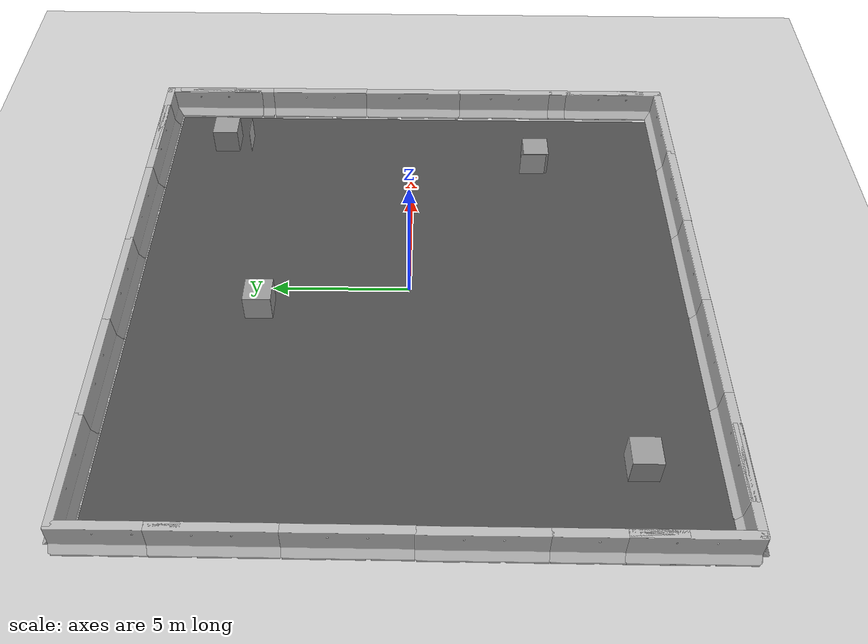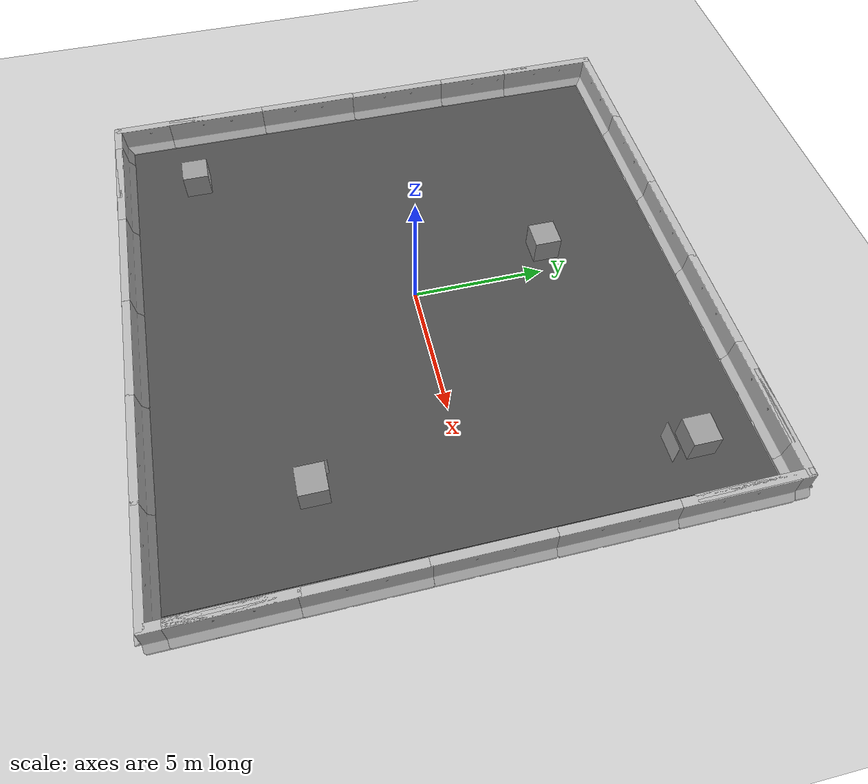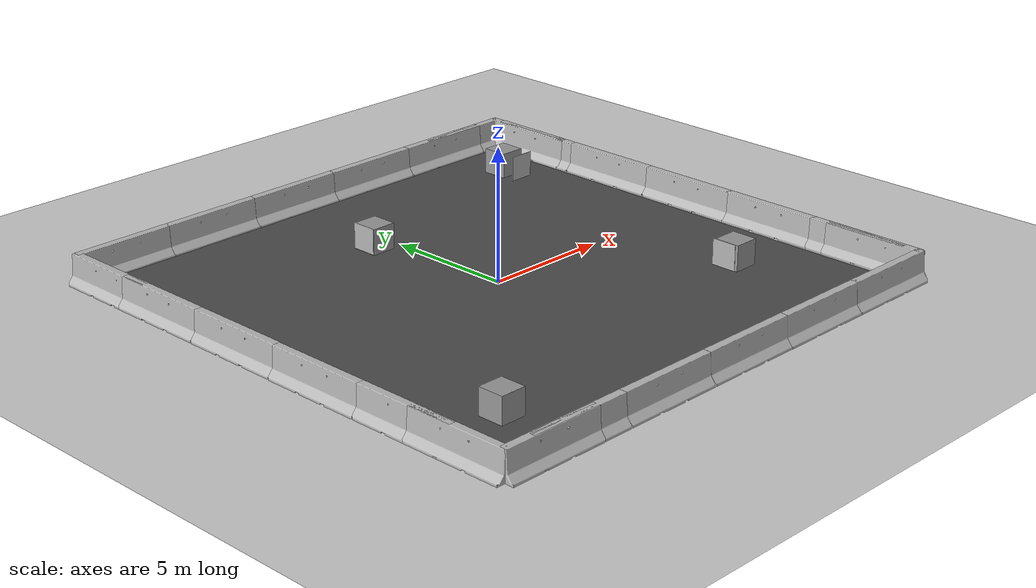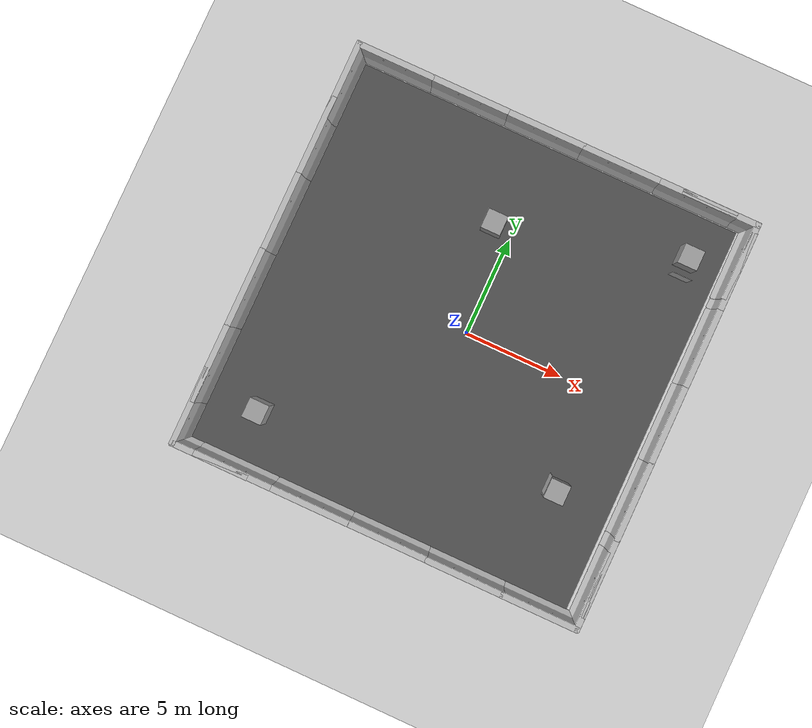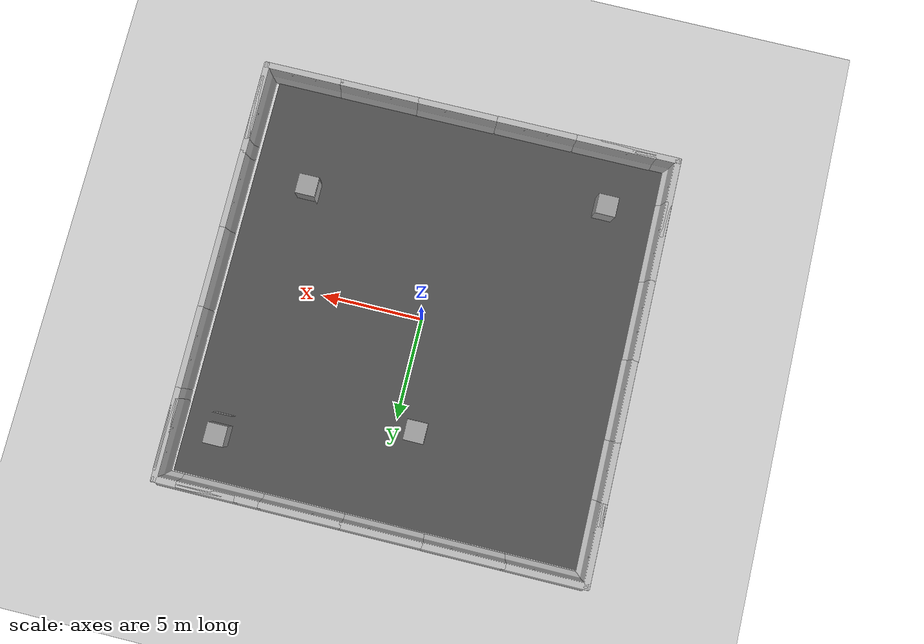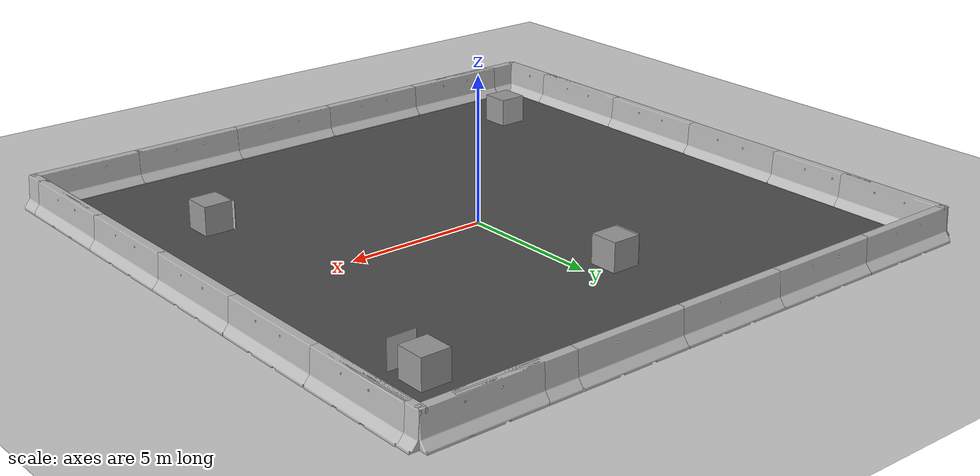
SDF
<sdf version="1.6">
 <world name="default">
  <light name="sun" type="directional">
   <pose>0 0 10 0 -0 0</pose>
   <diffuse>0.8 0.8 0.8 1</diffuse>
   <specular>0.2 0.2 0.2 1</specular>
   <attenuation>
    <range>1000</range>
    <constant>0.9</constant>
    <linear>0.01</linear>
    <quadratic>0.001</quadratic>
   </attenuation>
   <direction>-0.5 0.1 -0.9</direction>
  </light>
  <model name="ground_plane">
   <static>1</static>
   <link name="link">
    <collision name="collision">
     <geometry><plane><normal>0 0 1</normal><size>100 100</size></plane></geometry>
     <surface><friction><ode><mu>100</mu><mu2>50</mu2></ode></friction></surface>
    </collision>
    <visual name="visual">
     <cast_shadows>0</cast_shadows>
     <geometry><plane><normal>0 0 1</normal><size>100 100</size></plane></geometry>
     <material>
      <script><uri>file://media/materials/scripts/gazebo.material</uri><name>Gazebo/Grey</name></script>
     </material>
    </visual>
   </link>
  </model>
  <gravity>0 0 -9.8</gravity>
  <magnetic_field>6e-06 2.3e-05 -4.2e-05</magnetic_field>
  <atmosphere type="adiabatic"/>
  <physics name="default_physics" default="0" type="ode">
   <max_step_size>0.001</max_step_size>
   <real_time_factor>1</real_time_factor>
   <real_time_update_rate>1000</real_time_update_rate>
  </physics>
  <scene><ambient>0.4 0.4 0.4 1</ambient><background>0.7 0.7 0.7 1</background><shadows>1</shadows></scene>
  <audio><device>default</device></audio>
  <spherical_coordinates>
   <surface_model>EARTH_WGS84</surface_model>
   <latitude_deg>0</latitude_deg>
   <longitude_deg>0</longitude_deg>
   <elevation>0</elevation>
   <heading_deg>0</heading_deg>
  </spherical_coordinates>
  <model name="asphalt_plane">
   <static>1</static>
   <link name="link">
    <collision name="collision"><geometry><box><size>20 20 0.1</size></box></geometry></collision>
    <visual name="visual">
     <cast_shadows>0</cast_shadows>
     <geometry><box><size>20 20 0.1</size></box></geometry>
     <material>
      <script>
       <uri>model://asphalt_plane/materials/scripts</uri>
       <uri>model://asphalt_plane/materials/textures</uri>
       <name>vrc/asphalt</name>
      </script>
     </material>
    </visual>
   </link>
   <pose>-0.108878 -0.066396 0 0 -0 0</pose>
  </model>
  <model name="jersey_barrier">
   <static>1</static>
   <link name="link">
    <visual name="visual">
     <geometry><mesh><uri>model://jersey_barrier/meshes/jersey_barrier.dae</uri></mesh></geometry>
    </visual>
    <collision name="upright">
     <pose>0 0 0.5715 0 -0 0</pose>
     <geometry><box><size>4.06542 0.3063 1.143</size></box></geometry>
    </collision>
    <collision name="base">
     <pose>0 0 0.032258 0 -0 0</pose>
     <geometry><box><size>4.06542 0.8107 0.064516</size></box></geometry>
    </collision>
    <collision name="base2">
     <pose>0 0 0.1 0 -0 0</pose>
     <geometry><box><size>4.06542 0.65 0.1</size></box></geometry>
    </collision>
    <collision name="base3">
     <pose>0 0 0.2 0 -0 0</pose>
     <geometry><box><size>4.06542 0.5 0.1</size></box></geometry>
    </collision>
    <collision name="left-angle">
     <pose>0 -0.224 0.2401 0.9 -0 0</pose>
     <geometry><box><size>4.06542 0.5 0.064516</size></box></geometry>
    </collision>
    <collision name="right-angle">
     <pose>0 0.224 0.2401 -0.9 0 0</pose>
     <geometry><box><size>4.06542 0.5 0.064516</size></box></geometry>
    </collision>
   </link>
   <pose>-10.4081 -2.37167 0 0 0 -1.56853</pose>
  </model>
  <model name="jersey_barrier_clone">
   <static>1</static>
   <link name="link">
    <visual name="visual">
     <geometry><mesh><uri>model://jersey_barrier/meshes/jersey_barrier.dae</uri></mesh></geometry>
    </visual>
    <collision name="upright">
     <pose>0 0 0.5715 0 -0 0</pose>
     <geometry><box><size>4.06542 0.3063 1.143</size></box></geometry>
    </collision>
    <collision name="base">
     <pose>0 0 0.032258 0 -0 0</pose>
     <geometry><box><size>4.06542 0.8107 0.064516</size></box></geometry>
    </collision>
    <collision name="base2">
     <pose>0 0 0.1 0 -0 0</pose>
     <geometry><box><size>4.06542 0.65 0.1</size></box></geometry>
    </collision>
    <collision name="base3">
     <pose>0 0 0.2 0 -0 0</pose>
     <geometry><box><size>4.06542 0.5 0.1</size></box></geometry>
    </collision>
    <collision name="left-angle">
     <pose>0 -0.224 0.2401 0.9 -0 0</pose>
     <geometry><box><size>4.06542 0.5 0.064516</size></box></geometry>
    </collision>
    <collision name="right-angle">
     <pose>0 0.224 0.2401 -0.9 0 0</pose>
     <geometry><box><size>4.06542 0.5 0.064516</size></box></geometry>
    </collision>
   </link>
   <pose>-10.4006 -6.32632 0 0 0 -1.56853</pose>
  </model>
  <model name="jersey_barrier_clone_clone">
   <static>1</static>
   <link name="link">
    <visual name="visual">
     <geometry><mesh><uri>model://jersey_barrier/meshes/jersey_barrier.dae</uri></mesh></geometry>
    </visual>
    <collision name="upright">
     <pose>0 0 0.5715 0 -0 0</pose>
     <geometry><box><size>4.06542 0.3063 1.143</size></box></geometry>
    </collision>
    <collision name="base">
     <pose>0 0 0.032258 0 -0 0</pose>
     <geometry><box><size>4.06542 0.8107 0.064516</size></box></geometry>
    </collision>
    <collision name="base2">
     <pose>0 0 0.1 0 -0 0</pose>
     <geometry><box><size>4.06542 0.65 0.1</size></box></geometry>
    </collision>
    <collision name="base3">
     <pose>0 0 0.2 0 -0 0</pose>
     <geometry><box><size>4.06542 0.5 0.1</size></box></geometry>
    </collision>
    <collision name="left-angle">
     <pose>0 -0.224 0.2401 0.9 -0 0</pose>
     <geometry><box><size>4.06542 0.5 0.064516</size></box></geometry>
    </collision>
    <collision name="right-angle">
     <pose>0 0.224 0.2401 -0.9 0 0</pose>
     <geometry><box><size>4.06542 0.5 0.064516</size></box></geometry>
    </collision>
   </link>
   <pose>-10.399 -8.55847 0 0 0 -1.56853</pose>
  </model>
  <model name="jersey_barrier_clone_0">
   <static>1</static>
   <link name="link">
    <visual name="visual">
     <geometry><mesh><uri>model://jersey_barrier/meshes/jersey_barrier.dae</uri></mesh></geometry>
    </visual>
    <collision name="upright">
     <pose>0 0 0.5715 0 -0 0</pose>
     <geometry><box><size>4.06542 0.3063 1.143</size></box></geometry>
    </collision>
    <collision name="base">
     <pose>0 0 0.032258 0 -0 0</pose>
     <geometry><box><size>4.06542 0.8107 0.064516</size></box></geometry>
    </collision>
    <collision name="base2">
     <pose>0 0 0.1 0 -0 0</pose>
     <geometry><box><size>4.06542 0.65 0.1</size></box></geometry>
    </collision>
    <collision name="base3">
     <pose>0 0 0.2 0 -0 0</pose>
     <geometry><box><size>4.06542 0.5 0.1</size></box></geometry>
    </collision>
    <collision name="left-angle">
     <pose>0 -0.224 0.2401 0.9 -0 0</pose>
     <geometry><box><size>4.06542 0.5 0.064516</size></box></geometry>
    </collision>
    <collision name="right-angle">
     <pose>0 0.224 0.2401 -0.9 0 0</pose>
     <geometry><box><size>4.06542 0.5 0.064516</size></box></geometry>
    </collision>
   </link>
   <pose>-10.3955 1.61292 0 0 0 -1.56853</pose>
  </model>
  <model name="jersey_barrier_clone_0_clone">
   <static>1</static>
   <link name="link">
    <visual name="visual">
     <geometry><mesh><uri>model://jersey_barrier/meshes/jersey_barrier.dae</uri></mesh></geometry>
    </visual>
    <collision name="upright">
     <pose>0 0 0.5715 0 -0 0</pose>
     <geometry><box><size>4.06542 0.3063 1.143</size></box></geometry>
    </collision>
    <collision name="base">
     <pose>0 0 0.032258 0 -0 0</pose>
     <geometry><box><size>4.06542 0.8107 0.064516</size></box></geometry>
    </collision>
    <collision name="base2">
     <pose>0 0 0.1 0 -0 0</pose>
     <geometry><box><size>4.06542 0.65 0.1</size></box></geometry>
    </collision>
    <collision name="base3">
     <pose>0 0 0.2 0 -0 0</pose>
     <geometry><box><size>4.06542 0.5 0.1</size></box></geometry>
    </collision>
    <collision name="left-angle">
     <pose>0 -0.224 0.2401 0.9 -0 0</pose>
     <geometry><box><size>4.06542 0.5 0.064516</size></box></geometry>
    </collision>
    <collision name="right-angle">
     <pose>0 0.224 0.2401 -0.9 0 0</pose>
     <geometry><box><size>4.06542 0.5 0.064516</size></box></geometry>
    </collision>
   </link>
   <pose>-10.3957 5.59254 0 0 0 -1.56853</pose>
  </model>
  <model name="jersey_barrier_clone_0_clone_clone">
   <static>1</static>
   <link name="link">
    <visual name="visual">
     <geometry><mesh><uri>model://jersey_barrier/meshes/jersey_barrier.dae</uri></mesh></geometry>
    </visual>
    <collision name="upright">
     <pose>0 0 0.5715 0 -0 0</pose>
     <geometry><box><size>4.06542 0.3063 1.143</size></box></geometry>
    </collision>
    <collision name="base">
     <pose>0 0 0.032258 0 -0 0</pose>
     <geometry><box><size>4.06542 0.8107 0.064516</size></box></geometry>
    </collision>
    <collision name="base2">
     <pose>0 0 0.1 0 -0 0</pose>
     <geometry><box><size>4.06542 0.65 0.1</size></box></geometry>
    </collision>
    <collision name="base3">
     <pose>0 0 0.2 0 -0 0</pose>
     <geometry><box><size>4.06542 0.5 0.1</size></box></geometry>
    </collision>
    <collision name="left-angle">
     <pose>0 -0.224 0.2401 0.9 -0 0</pose>
     <geometry><box><size>4.06542 0.5 0.064516</size></box></geometry>
    </collision>
    <collision name="right-angle">
     <pose>0 0.224 0.2401 -0.9 0 0</pose>
     <geometry><box><size>4.06542 0.5 0.064516</size></box></geometry>
    </collision>
   </link>
   <pose>-10.3995 8.50957 0 0 0 -1.56853</pose>
  </model>
  <model name="jersey_barrier_clone_0_clone_clone_0">
   <static>1</static>
   <link name="link">
    <visual name="visual">
     <geometry><mesh><uri>model://jersey_barrier/meshes/jersey_barrier.dae</uri></mesh></geometry>
    </visual>
    <collision name="upright">
     <pose>0 0 0.5715 0 -0 0</pose>
     <geometry><box><size>4.06542 0.3063 1.143</size></box></geometry>
    </collision>
    <collision name="base">
     <pose>0 0 0.032258 0 -0 0</pose>
     <geometry><box><size>4.06542 0.8107 0.064516</size></box></geometry>
    </collision>
    <collision name="base2">
     <pose>0 0 0.1 0 -0 0</pose>
     <geometry><box><size>4.06542 0.65 0.1</size></box></geometry>
    </collision>
    <collision name="base3">
     <pose>0 0 0.2 0 -0 0</pose>
     <geometry><box><size>4.06542 0.5 0.1</size></box></geometry>
    </collision>
    <collision name="left-angle">
     <pose>0 -0.224 0.2401 0.9 -0 0</pose>
     <geometry><box><size>4.06542 0.5 0.064516</size></box></geometry>
    </collision>
    <collision name="right-angle">
     <pose>0 0.224 0.2401 -0.9 0 0</pose>
     <geometry><box><size>4.06542 0.5 0.064516</size></box></geometry>
    </collision>
   </link>
   <pose>10.4387 4.00505 0 0 0 -1.56853</pose>
  </model>
  <model name="jersey_barrier_clone_0_clone_clone_0_clone">
   <static>1</static>
   <link name="link">
    <visual name="visual">
     <geometry><mesh><uri>model://jersey_barrier/meshes/jersey_barrier.dae</uri></mesh></geometry>
    </visual>
    <collision name="upright">
     <pose>0 0 0.5715 0 -0 0</pose>
     <geometry><box><size>4.06542 0.3063 1.143</size></box></geometry>
    </collision>
    <collision name="base">
     <pose>0 0 0.032258 0 -0 0</pose>
     <geometry><box><size>4.06542 0.8107 0.064516</size></box></geometry>
    </collision>
    <collision name="base2">
     <pose>0 0 0.1 0 -0 0</pose>
     <geometry><box><size>4.06542 0.65 0.1</size></box></geometry>
    </collision>
    <collision name="base3">
     <pose>0 0 0.2 0 -0 0</pose>
     <geometry><box><size>4.06542 0.5 0.1</size></box></geometry>
    </collision>
    <collision name="left-angle">
     <pose>0 -0.224 0.2401 0.9 -0 0</pose>
     <geometry><box><size>4.06542 0.5 0.064516</size></box></geometry>
    </collision>
    <collision name="right-angle">
     <pose>0 0.224 0.2401 -0.9 0 0</pose>
     <geometry><box><size>4.06542 0.5 0.064516</size></box></geometry>
    </collision>
   </link>
   <pose>10.4294 8.00092 0 0 0 -1.56853</pose>
  </model>
  <model name="jersey_barrier_clone_0_clone_clone_0_clone_0">
   <static>1</static>
   <link name="link">
    <visual name="visual">
     <geometry><mesh><uri>model://jersey_barrier/meshes/jersey_barrier.dae</uri></mesh></geometry>
    </visual>
    <collision name="upright">
     <pose>0 0 0.5715 0 -0 0</pose>
     <geometry><box><size>4.06542 0.3063 1.143</size></box></geometry>
    </collision>
    <collision name="base">
     <pose>0 0 0.032258 0 -0 0</pose>
     <geometry><box><size>4.06542 0.8107 0.064516</size></box></geometry>
    </collision>
    <collision name="base2">
     <pose>0 0 0.1 0 -0 0</pose>
     <geometry><box><size>4.06542 0.65 0.1</size></box></geometry>
    </collision>
    <collision name="base3">
     <pose>0 0 0.2 0 -0 0</pose>
     <geometry><box><size>4.06542 0.5 0.1</size></box></geometry>
    </collision>
    <collision name="left-angle">
     <pose>0 -0.224 0.2401 0.9 -0 0</pose>
     <geometry><box><size>4.06542 0.5 0.064516</size></box></geometry>
    </collision>
    <collision name="right-angle">
     <pose>0 0.224 0.2401 -0.9 0 0</pose>
     <geometry><box><size>4.06542 0.5 0.064516</size></box></geometry>
    </collision>
   </link>
   <pose>10.4404 0.012962 0 0 0 -1.56853</pose>
  </model>
  <model name="jersey_barrier_clone_0_clone_clone_0_clone_0_clone">
   <static>1</static>
   <link name="link">
    <visual name="visual">
     <geometry><mesh><uri>model://jersey_barrier/meshes/jersey_barrier.dae</uri></mesh></geometry>
    </visual>
    <collision name="upright">
     <pose>0 0 0.5715 0 -0 0</pose>
     <geometry><box><size>4.06542 0.3063 1.143</size></box></geometry>
    </collision>
    <collision name="base">
     <pose>0 0 0.032258 0 -0 0</pose>
     <geometry><box><size>4.06542 0.8107 0.064516</size></box></geometry>
    </collision>
    <collision name="base2">
     <pose>0 0 0.1 0 -0 0</pose>
     <geometry><box><size>4.06542 0.65 0.1</size></box></geometry>
    </collision>
    <collision name="base3">
     <pose>0 0 0.2 0 -0 0</pose>
     <geometry><box><size>4.06542 0.5 0.1</size></box></geometry>
    </collision>
    <collision name="left-angle">
     <pose>0 -0.224 0.2401 0.9 -0 0</pose>
     <geometry><box><size>4.06542 0.5 0.064516</size></box></geometry>
    </collision>
    <collision name="right-angle">
     <pose>0 0.224 0.2401 -0.9 0 0</pose>
     <geometry><box><size>4.06542 0.5 0.064516</size></box></geometry>
    </collision>
   </link>
   <pose>10.454 -3.91926 0 0 0 -1.56853</pose>
  </model>
  <model name="jersey_barrier_clone_0_clone_clone_0_clone_0_clone_clone">
   <static>1</static>
   <link name="link">
    <visual name="visual">
     <geometry><mesh><uri>model://jersey_barrier/meshes/jersey_barrier.dae</uri></mesh></geometry>
    </visual>
    <collision name="upright">
     <pose>0 0 0.5715 0 -0 0</pose>
     <geometry><box><size>4.06542 0.3063 1.143</size></box></geometry>
    </collision>
    <collision name="base">
     <pose>0 0 0.032258 0 -0 0</pose>
     <geometry><box><size>4.06542 0.8107 0.064516</size></box></geometry>
    </collision>
    <collision name="base2">
     <pose>0 0 0.1 0 -0 0</pose>
     <geometry><box><size>4.06542 0.65 0.1</size></box></geometry>
    </collision>
    <collision name="base3">
     <pose>0 0 0.2 0 -0 0</pose>
     <geometry><box><size>4.06542 0.5 0.1</size></box></geometry>
    </collision>
    <collision name="left-angle">
     <pose>0 -0.224 0.2401 0.9 -0 0</pose>
     <geometry><box><size>4.06542 0.5 0.064516</size></box></geometry>
    </collision>
    <collision name="right-angle">
     <pose>0 0.224 0.2401 -0.9 0 0</pose>
     <geometry><box><size>4.06542 0.5 0.064516</size></box></geometry>
    </collision>
   </link>
   <pose>10.4554 -7.82224 0 0 0 -1.56853</pose>
  </model>
  <model name="jersey_barrier_clone_0_clone_clone_0_clone_0_clone_clone_clone">
   <static>1</static>
   <link name="link">
    <visual name="visual">
     <geometry><mesh><uri>model://jersey_barrier/meshes/jersey_barrier.dae</uri></mesh></geometry>
    </visual>
    <collision name="upright">
     <pose>0 0 0.5715 0 -0 0</pose>
     <geometry><box><size>4.06542 0.3063 1.143</size></box></geometry>
    </collision>
    <collision name="base">
     <pose>0 0 0.032258 0 -0 0</pose>
     <geometry><box><size>4.06542 0.8107 0.064516</size></box></geometry>
    </collision>
    <collision name="base2">
     <pose>0 0 0.1 0 -0 0</pose>
     <geometry><box><size>4.06542 0.65 0.1</size></box></geometry>
    </collision>
    <collision name="base3">
     <pose>0 0 0.2 0 -0 0</pose>
     <geometry><box><size>4.06542 0.5 0.1</size></box></geometry>
    </collision>
    <collision name="left-angle">
     <pose>0 -0.224 0.2401 0.9 -0 0</pose>
     <geometry><box><size>4.06542 0.5 0.064516</size></box></geometry>
    </collision>
    <collision name="right-angle">
     <pose>0 0.224 0.2401 -0.9 0 0</pose>
     <geometry><box><size>4.06542 0.5 0.064516</size></box></geometry>
    </collision>
   </link>
   <pose>10.4553 -8.53257 0 0 0 -1.56853</pose>
  </model>
  <model name="jersey_barrier_clone_0_clone_clone_0_clone_0_clone_clone_clone_clone">
   <static>1</static>
   <link name="link">
    <visual name="visual">
     <geometry><mesh><uri>model://jersey_barrier/meshes/jersey_barrier.dae</uri></mesh></geometry>
    </visual>
    <collision name="upright">
     <pose>0 0 0.5715 0 -0 0</pose>
     <geometry><box><size>4.06542 0.3063 1.143</size></box></geometry>
    </collision>
    <collision name="base">
     <pose>0 0 0.032258 0 -0 0</pose>
     <geometry><box><size>4.06542 0.8107 0.064516</size></box></geometry>
    </collision>
    <collision name="base2">
     <pose>0 0 0.1 0 -0 0</pose>
     <geometry><box><size>4.06542 0.65 0.1</size></box></geometry>
    </collision>
    <collision name="base3">
     <pose>0 0 0.2 0 -0 0</pose>
     <geometry><box><size>4.06542 0.5 0.1</size></box></geometry>
    </collision>
    <collision name="left-angle">
     <pose>0 -0.224 0.2401 0.9 -0 0</pose>
     <geometry><box><size>4.06542 0.5 0.064516</size></box></geometry>
    </collision>
    <collision name="right-angle">
     <pose>0 0.224 0.2401 -0.9 0 0</pose>
     <geometry><box><size>4.06542 0.5 0.064516</size></box></geometry>
    </collision>
   </link>
   <pose>8.54111 -10.4306 0 0 0 -3.1405</pose>
  </model>
  <model name="jersey_barrier_clone_0_clone_clone_0_clone_0_clone_clone_clone_clone_clone">
   <static>1</static>
   <link name="link">
    <visual name="visual">
     <geometry><mesh><uri>model://jersey_barrier/meshes/jersey_barrier.dae</uri></mesh></geometry>
    </visual>
    <collision name="upright">
     <pose>0 0 0.5715 0 -0 0</pose>
     <geometry><box><size>4.06542 0.3063 1.143</size></box></geometry>
    </collision>
    <collision name="base">
     <pose>0 0 0.032258 0 -0 0</pose>
     <geometry><box><size>4.06542 0.8107 0.064516</size></box></geometry>
    </collision>
    <collision name="base2">
     <pose>0 0 0.1 0 -0 0</pose>
     <geometry><box><size>4.06542 0.65 0.1</size></box></geometry>
    </collision>
    <collision name="base3">
     <pose>0 0 0.2 0 -0 0</pose>
     <geometry><box><size>4.06542 0.5 0.1</size></box></geometry>
    </collision>
    <collision name="left-angle">
     <pose>0 -0.224 0.2401 0.9 -0 0</pose>
     <geometry><box><size>4.06542 0.5 0.064516</size></box></geometry>
    </collision>
    <collision name="right-angle">
     <pose>0 0.224 0.2401 -0.9 0 0</pose>
     <geometry><box><size>4.06542 0.5 0.064516</size></box></geometry>
    </collision>
   </link>
   <pose>4.67032 -10.4305 0 0 0 -3.1405</pose>
  </model>
  <model name="jersey_barrier_clone_0_clone_clone_0_clone_0_clone_clone_clone_clone_clone_clone">
   <static>1</static>
   <link name="link">
    <visual name="visual">
     <geometry><mesh><uri>model://jersey_barrier/meshes/jersey_barrier.dae</uri></mesh></geometry>
    </visual>
    <collision name="upright">
     <pose>0 0 0.5715 0 -0 0</pose>
     <geometry><box><size>4.06542 0.3063 1.143</size></box></geometry>
    </collision>
    <collision name="base">
     <pose>0 0 0.032258 0 -0 0</pose>
     <geometry><box><size>4.06542 0.8107 0.064516</size></box></geometry>
    </collision>
    <collision name="base2">
     <pose>0 0 0.1 0 -0 0</pose>
     <geometry><box><size>4.06542 0.65 0.1</size></box></geometry>
    </collision>
    <collision name="base3">
     <pose>0 0 0.2 0 -0 0</pose>
     <geometry><box><size>4.06542 0.5 0.1</size></box></geometry>
    </collision>
    <collision name="left-angle">
     <pose>0 -0.224 0.2401 0.9 -0 0</pose>
     <geometry><box><size>4.06542 0.5 0.064516</size></box></geometry>
    </collision>
    <collision name="right-angle">
     <pose>0 0.224 0.2401 -0.9 0 0</pose>
     <geometry><box><size>4.06542 0.5 0.064516</size></box></geometry>
    </collision>
   </link>
   <pose>0.717436 -10.4264 0 0 0 -3.1405</pose>
  </model>
  <model name="jersey_barrier_clone_0_clone_clone_0_clone_0_clone_clone_clone_clone_clone_clone_clone">
   <static>1</static>
   <link name="link">
    <visual name="visual">
     <geometry><mesh><uri>model://jersey_barrier/meshes/jersey_barrier.dae</uri></mesh></geometry>
    </visual>
    <collision name="upright">
     <pose>0 0 0.5715 0 -0 0</pose>
     <geometry><box><size>4.06542 0.3063 1.143</size></box></geometry>
    </collision>
    <collision name="base">
     <pose>0 0 0.032258 0 -0 0</pose>
     <geometry><box><size>4.06542 0.8107 0.064516</size></box></geometry>
    </collision>
    <collision name="base2">
     <pose>0 0 0.1 0 -0 0</pose>
     <geometry><box><size>4.06542 0.65 0.1</size></box></geometry>
    </collision>
    <collision name="base3">
     <pose>0 0 0.2 0 -0 0</pose>
     <geometry><box><size>4.06542 0.5 0.1</size></box></geometry>
    </collision>
    <collision name="left-angle">
     <pose>0 -0.224 0.2401 0.9 -0 0</pose>
     <geometry><box><size>4.06542 0.5 0.064516</size></box></geometry>
    </collision>
    <collision name="right-angle">
     <pose>0 0.224 0.2401 -0.9 0 0</pose>
     <geometry><box><size>4.06542 0.5 0.064516</size></box></geometry>
    </collision>
   </link>
   <pose>-3.30508 -10.4367 0 0 0 -3.1405</pose>
  </model>
  <model name="jersey_barrier_clone_0_clone_clone_0_clone_0_clone_clone_clone_clone_clone_clone_clone_clone">
   <static>1</static>
   <link name="link">
    <visual name="visual">
     <geometry><mesh><uri>model://jersey_barrier/meshes/jersey_barrier.dae</uri></mesh></geometry>
    </visual>
    <collision name="upright">
     <pose>0 0 0.5715 0 -0 0</pose>
     <geometry><box><size>4.06542 0.3063 1.143</size></box></geometry>
    </collision>
    <collision name="base">
     <pose>0 0 0.032258 0 -0 0</pose>
     <geometry><box><size>4.06542 0.8107 0.064516</size></box></geometry>
    </collision>
    <collision name="base2">
     <pose>0 0 0.1 0 -0 0</pose>
     <geometry><box><size>4.06542 0.65 0.1</size></box></geometry>
    </collision>
    <collision name="base3">
     <pose>0 0 0.2 0 -0 0</pose>
     <geometry><box><size>4.06542 0.5 0.1</size></box></geometry>
    </collision>
    <collision name="left-angle">
     <pose>0 -0.224 0.2401 0.9 -0 0</pose>
     <geometry><box><size>4.06542 0.5 0.064516</size></box></geometry>
    </collision>
    <collision name="right-angle">
     <pose>0 0.224 0.2401 -0.9 0 0</pose>
     <geometry><box><size>4.06542 0.5 0.064516</size></box></geometry>
    </collision>
   </link>
   <pose>-7.30092 -10.4427 0 0 0 -3.1405</pose>
  </model>
  <model name="jersey_barrier_clone_0_clone_clone_0_clone_0_clone_clone_clone_clone_clone_clone_clone_clone_clone">
   <static>1</static>
   <link name="link">
    <visual name="visual">
     <geometry><mesh><uri>model://jersey_barrier/meshes/jersey_barrier.dae</uri></mesh></geometry>
    </visual>
    <collision name="upright">
     <pose>0 0 0.5715 0 -0 0</pose>
     <geometry><box><size>4.06542 0.3063 1.143</size></box></geometry>
    </collision>
    <collision name="base">
     <pose>0 0 0.032258 0 -0 0</pose>
     <geometry><box><size>4.06542 0.8107 0.064516</size></box></geometry>
    </collision>
    <collision name="base2">
     <pose>0 0 0.1 0 -0 0</pose>
     <geometry><box><size>4.06542 0.65 0.1</size></box></geometry>
    </collision>
    <collision name="base3">
     <pose>0 0 0.2 0 -0 0</pose>
     <geometry><box><size>4.06542 0.5 0.1</size></box></geometry>
    </collision>
    <collision name="left-angle">
     <pose>0 -0.224 0.2401 0.9 -0 0</pose>
     <geometry><box><size>4.06542 0.5 0.064516</size></box></geometry>
    </collision>
    <collision name="right-angle">
     <pose>0 0.224 0.2401 -0.9 0 0</pose>
     <geometry><box><size>4.06542 0.5 0.064516</size></box></geometry>
    </collision>
   </link>
   <pose>-8.5023 -10.4619 0 0 0 -3.1405</pose>
  </model>
  <model name="jersey_barrier_clone_0_clone_clone_0_clone_0_clone_clone_clone_clone_clone_clone_clone_clone_clone_0">
   <static>1</static>
   <link name="link">
    <visual name="visual">
     <geometry><mesh><uri>model://jersey_barrier/meshes/jersey_barrier.dae</uri></mesh></geometry>
    </visual>
    <collision name="upright">
     <pose>0 0 0.5715 0 -0 0</pose>
     <geometry><box><size>4.06542 0.3063 1.143</size></box></geometry>
    </collision>
    <collision name="base">
     <pose>0 0 0.032258 0 -0 0</pose>
     <geometry><box><size>4.06542 0.8107 0.064516</size></box></geometry>
    </collision>
    <collision name="base2">
     <pose>0 0 0.1 0 -0 0</pose>
     <geometry><box><size>4.06542 0.65 0.1</size></box></geometry>
    </collision>
    <collision name="base3">
     <pose>0 0 0.2 0 -0 0</pose>
     <geometry><box><size>4.06542 0.5 0.1</size></box></geometry>
    </collision>
    <collision name="left-angle">
     <pose>0 -0.224 0.2401 0.9 -0 0</pose>
     <geometry><box><size>4.06542 0.5 0.064516</size></box></geometry>
    </collision>
    <collision name="right-angle">
     <pose>0 0.224 0.2401 -0.9 0 0</pose>
     <geometry><box><size>4.06542 0.5 0.064516</size></box></geometry>
    </collision>
   </link>
   <pose>-8.46956 10.3873 0 0 0 -3.1405</pose>
  </model>
  <model name="jersey_barrier_clone_0_clone_clone_0_clone_0_clone_clone_clone_clone_clone_clone_clone_clone_clone_0_clone">
   <static>1</static>
   <link name="link">
    <visual name="visual">
     <geometry><mesh><uri>model://jersey_barrier/meshes/jersey_barrier.dae</uri></mesh></geometry>
    </visual>
    <collision name="upright">
     <pose>0 0 0.5715 0 -0 0</pose>
     <geometry><box><size>4.06542 0.3063 1.143</size></box></geometry>
    </collision>
    <collision name="base">
     <pose>0 0 0.032258 0 -0 0</pose>
     <geometry><box><size>4.06542 0.8107 0.064516</size></box></geometry>
    </collision>
    <collision name="base2">
     <pose>0 0 0.1 0 -0 0</pose>
     <geometry><box><size>4.06542 0.65 0.1</size></box></geometry>
    </collision>
    <collision name="base3">
     <pose>0 0 0.2 0 -0 0</pose>
     <geometry><box><size>4.06542 0.5 0.1</size></box></geometry>
    </collision>
    <collision name="left-angle">
     <pose>0 -0.224 0.2401 0.9 -0 0</pose>
     <geometry><box><size>4.06542 0.5 0.064516</size></box></geometry>
    </collision>
    <collision name="right-angle">
     <pose>0 0.224 0.2401 -0.9 0 0</pose>
     <geometry><box><size>4.06542 0.5 0.064516</size></box></geometry>
    </collision>
   </link>
   <pose>-4.54252 10.3911 0 0 0 -3.1405</pose>
  </model>
  <model name="jersey_barrier_clone_0_clone_clone_0_clone_0_clone_clone_clone_clone_clone_clone_clone_clone_clone_0_clone_clone">
   <static>1</static>
   <link name="link">
    <visual name="visual">
     <geometry><mesh><uri>model://jersey_barrier/meshes/jersey_barrier.dae</uri></mesh></geometry>
    </visual>
    <collision name="upright">
     <pose>0 0 0.5715 0 -0 0</pose>
     <geometry><box><size>4.06542 0.3063 1.143</size></box></geometry>
    </collision>
    <collision name="base">
     <pose>0 0 0.032258 0 -0 0</pose>
     <geometry><box><size>4.06542 0.8107 0.064516</size></box></geometry>
    </collision>
    <collision name="base2">
     <pose>0 0 0.1 0 -0 0</pose>
     <geometry><box><size>4.06542 0.65 0.1</size></box></geometry>
    </collision>
    <collision name="base3">
     <pose>0 0 0.2 0 -0 0</pose>
     <geometry><box><size>4.06542 0.5 0.1</size></box></geometry>
    </collision>
    <collision name="left-angle">
     <pose>0 -0.224 0.2401 0.9 -0 0</pose>
     <geometry><box><size>4.06542 0.5 0.064516</size></box></geometry>
    </collision>
    <collision name="right-angle">
     <pose>0 0.224 0.2401 -0.9 0 0</pose>
     <geometry><box><size>4.06542 0.5 0.064516</size></box></geometry>
    </collision>
   </link>
   <pose>-0.569356 10.3909 0 0 0 -3.1405</pose>
  </model>
  <model name="jersey_barrier_clone_0_clone_clone_0_clone_0_clone_clone_clone_clone_clone_clone_clone_clone_clone_0_clone_clone_clone">
   <static>1</static>
   <link name="link">
    <visual name="visual">
     <geometry><mesh><uri>model://jersey_barrier/meshes/jersey_barrier.dae</uri></mesh></geometry>
    </visual>
    <collision name="upright">
     <pose>0 0 0.5715 0 -0 0</pose>
     <geometry><box><size>4.06542 0.3063 1.143</size></box></geometry>
    </collision>
    <collision name="base">
     <pose>0 0 0.032258 0 -0 0</pose>
     <geometry><box><size>4.06542 0.8107 0.064516</size></box></geometry>
    </collision>
    <collision name="base2">
     <pose>0 0 0.1 0 -0 0</pose>
     <geometry><box><size>4.06542 0.65 0.1</size></box></geometry>
    </collision>
    <collision name="base3">
     <pose>0 0 0.2 0 -0 0</pose>
     <geometry><box><size>4.06542 0.5 0.1</size></box></geometry>
    </collision>
    <collision name="left-angle">
     <pose>0 -0.224 0.2401 0.9 -0 0</pose>
     <geometry><box><size>4.06542 0.5 0.064516</size></box></geometry>
    </collision>
    <collision name="right-angle">
     <pose>0 0.224 0.2401 -0.9 0 0</pose>
     <geometry><box><size>4.06542 0.5 0.064516</size></box></geometry>
    </collision>
   </link>
   <pose>3.34861 10.3929 0 0 0 -3.1405</pose>
  </model>
  <model name="jersey_barrier_clone_0_clone_clone_0_clone_0_clone_clone_clone_clone_clone_clone_clone_clone_clone_0_clone_clone_clone_clone">
   <static>1</static>
   <link name="link">
    <visual name="visual">
     <geometry><mesh><uri>model://jersey_barrier/meshes/jersey_barrier.dae</uri></mesh></geometry>
    </visual>
    <collision name="upright">
     <pose>0 0 0.5715 0 -0 0</pose>
     <geometry><box><size>4.06542 0.3063 1.143</size></box></geometry>
    </collision>
    <collision name="base">
     <pose>0 0 0.032258 0 -0 0</pose>
     <geometry><box><size>4.06542 0.8107 0.064516</size></box></geometry>
    </collision>
    <collision name="base2">
     <pose>0 0 0.1 0 -0 0</pose>
     <geometry><box><size>4.06542 0.65 0.1</size></box></geometry>
    </collision>
    <collision name="base3">
     <pose>0 0 0.2 0 -0 0</pose>
     <geometry><box><size>4.06542 0.5 0.1</size></box></geometry>
    </collision>
    <collision name="left-angle">
     <pose>0 -0.224 0.2401 0.9 -0 0</pose>
     <geometry><box><size>4.06542 0.5 0.064516</size></box></geometry>
    </collision>
    <collision name="right-angle">
     <pose>0 0.224 0.2401 -0.9 0 0</pose>
     <geometry><box><size>4.06542 0.5 0.064516</size></box></geometry>
    </collision>
   </link>
   <pose>7.33451 10.3962 0 0 0 -3.1405</pose>
  </model>
  <model name="jersey_barrier_clone_0_clone_clone_0_clone_0_clone_clone_clone_clone_clone_clone_clone_clone_clone_0_clone_clone_clone_clone_clone">
   <static>1</static>
   <link name="link">
    <visual name="visual">
     <geometry><mesh><uri>model://jersey_barrier/meshes/jersey_barrier.dae</uri></mesh></geometry>
    </visual>
    <collision name="upright">
     <pose>0 0 0.5715 0 -0 0</pose>
     <geometry><box><size>4.06542 0.3063 1.143</size></box></geometry>
    </collision>
    <collision name="base">
     <pose>0 0 0.032258 0 -0 0</pose>
     <geometry><box><size>4.06542 0.8107 0.064516</size></box></geometry>
    </collision>
    <collision name="base2">
     <pose>0 0 0.1 0 -0 0</pose>
     <geometry><box><size>4.06542 0.65 0.1</size></box></geometry>
    </collision>
    <collision name="base3">
     <pose>0 0 0.2 0 -0 0</pose>
     <geometry><box><size>4.06542 0.5 0.1</size></box></geometry>
    </collision>
    <collision name="left-angle">
     <pose>0 -0.224 0.2401 0.9 -0 0</pose>
     <geometry><box><size>4.06542 0.5 0.064516</size></box></geometry>
    </collision>
    <collision name="right-angle">
     <pose>0 0.224 0.2401 -0.9 0 0</pose>
     <geometry><box><size>4.06542 0.5 0.064516</size></box></geometry>
    </collision>
   </link>
   <pose>8.50613 10.3986 0 0 0 -3.1405</pose>
  </model>
  <model name="jersey_barrier_clone_0_clone_clone_0_clone_clone">
   <static>1</static>
   <link name="link">
    <visual name="visual">
     <geometry><mesh><uri>model://jersey_barrier/meshes/jersey_barrier.dae</uri></mesh></geometry>
    </visual>
    <collision name="upright">
     <pose>0 0 0.5715 0 -0 0</pose>
     <geometry><box><size>4.06542 0.3063 1.143</size></box></geometry>
    </collision>
    <collision name="base">
     <pose>0 0 0.032258 0 -0 0</pose>
     <geometry><box><size>4.06542 0.8107 0.064516</size></box></geometry>
    </collision>
    <collision name="base2">
     <pose>0 0 0.1 0 -0 0</pose>
     <geometry><box><size>4.06542 0.65 0.1</size></box></geometry>
    </collision>
    <collision name="base3">
     <pose>0 0 0.2 0 -0 0</pose>
     <geometry><box><size>4.06542 0.5 0.1</size></box></geometry>
    </collision>
    <collision name="left-angle">
     <pose>0 -0.224 0.2401 0.9 -0 0</pose>
     <geometry><box><size>4.06542 0.5 0.064516</size></box></geometry>
    </collision>
    <collision name="right-angle">
     <pose>0 0.224 0.2401 -0.9 0 0</pose>
     <geometry><box><size>4.06542 0.5 0.064516</size></box></geometry>
    </collision>
   </link>
   <pose>10.4015 8.53004 0 0 0 -1.56853</pose>
  </model>
  <model name="unit_box">
   <pose>7 -5 0.55 0 -0 3.9e-05</pose>
   <link name="link">
    <inertial>
     <mass>1</mass>
     <inertia>
      <ixx>0.166667</ixx>
      <ixy>0</ixy>
      <ixz>0</ixz>
      <iyy>0.166667</iyy>
      <iyz>0</iyz>
      <izz>0.166667</izz>
     </inertia>
    </inertial>
    <collision name="collision"><geometry><box><size>1 1 1</size></box></geometry></collision>
    <visual name="visual">
     <geometry><box><size>1 1 1</size></box></geometry>
     <material>
      <script><name>Gazebo/Grey</name><uri>file://media/materials/scripts/gazebo.material</uri></script>
     </material>
    </visual>
   </link>
  </model>
  <model name="unit_box_0">
   <pose>-0.995962 5.35676 0.550002 -4e-06 -0 4.9e-05</pose>
   <link name="link">
    <inertial>
     <mass>1</mass>
     <inertia>
      <ixx>0.166667</ixx>
      <ixy>0</ixy>
      <ixz>0</ixz>
      <iyy>0.166667</iyy>
      <iyz>0</iyz>
      <izz>0.166667</izz>
     </inertia>
    </inertial>
    <collision name="collision"><geometry><box><size>1 1 1</size></box></geometry></collision>
    <visual name="visual">
     <geometry><box><size>1 1 1</size></box></geometry>
     <material>
      <script><name>Gazebo/Grey</name><uri>file://media/materials/scripts/gazebo.material</uri></script>
     </material>
    </visual>
   </link>
  </model>
  <model name="unit_box_1">
   <pose>-7.5 -7.5 0.55 0 -0 4.9e-05</pose>
   <link name="link">
    <inertial>
     <mass>1</mass>
     <inertia>
      <ixx>0.166667</ixx>
      <ixy>0</ixy>
      <ixz>0</ixz>
      <iyy>0.166667</iyy>
      <iyz>0</iyz>
      <izz>0.166667</izz>
     </inertia>
    </inertial>
    <collision name="collision"><geometry><box><size>1 1 1</size></box></geometry></collision>
    <visual name="visual">
     <geometry><box><size>1 1 1</size></box></geometry>
     <material>
      <script><name>Gazebo/Grey</name><uri>file://media/materials/scripts/gazebo.material</uri></script>
     </material>
    </visual>
   </link>
  </model>
  <model name="unit_box_2">
   <pose>8.17465 7.73333 0.550002 -4e-06 -0 4.9e-05</pose>
   <link name="link">
    <inertial>
     <mass>1</mass>
     <inertia>
      <ixx>0.166667</ixx>
      <ixy>0</ixy>
      <ixz>0</ixz>
      <iyy>0.166667</iyy>
      <iyz>0</iyz>
      <izz>0.166667</izz>
     </inertia>
    </inertial>
    <collision name="collision"><geometry><box><size>1 1 1</size></box></geometry></collision>
    <visual name="visual">
     <geometry><box><size>1 1 1</size></box></geometry>
     <material>
      <script><name>Gazebo/Grey</name><uri>file://media/materials/scripts/gazebo.material</uri></script>
     </material>
    </visual>
   </link>
  </model>
  <model name="Apriltag36_11_00000">
   <link name="main">
    <visual name="main_Visual">
     <geometry><box><size>1 1 0.01</size></box></geometry>
     <material>
      <script>
       <uri>model://Apriltag36_11_00000/materials/scripts</uri>
       <uri>model://Apriltag36_11_00000/materials/textures</uri>
       <name>Apriltag36_11_00000</name>
      </script>
     </material>
    </visual>
   </link>
   <static>1</static>
   <pose>6.47082 -4.89921 0.548581 0 -1.57079 0</pose>
  </model>
  <model name="Apriltag36_11_00001">
   <link name="main">
    <visual name="main_Visual">
     <geometry><box><size>1 1 0.01</size></box></geometry>
     <material>
      <script>
       <uri>model://Apriltag36_11_00001/materials/scripts</uri>
       <uri>model://Apriltag36_11_00001/materials/textures</uri>
       <name>Apriltag36_11_00001</name>
      </script>
     </material>
    </visual>
   </link>
   <static>1</static>
   <pose>-1.51214 5.35642 0.581577 0 -1.57079 0</pose>
  </model>
  <model name="Apriltag36_11_00002">
   <link name="main">
    <visual name="main_Visual">
     <geometry><box><size>1 1 0.01</size></box></geometry>
     <material>
      <script>
       <uri>model://Apriltag36_11_00002/materials/scripts</uri>
       <uri>model://Apriltag36_11_00002/materials/textures</uri>
       <name>Apriltag36_11_00002</name>
      </script>
     </material>
    </visual>
   </link>
   <static>1</static>
   <pose>8.17 6.73 0.55 1.57079 -1.57079 -3e-06</pose>
  </model>
  <model name="Apriltag36_11_00003">
   <link name="main">
    <visual name="main_Visual">
     <geometry><box><size>1 1 0.01</size></box></geometry>
     <material>
      <script>
       <uri>model://Apriltag36_11_00003/materials/scripts</uri>
       <uri>model://Apriltag36_11_00003/materials/textures</uri>
       <name>Apriltag36_11_00003</name>
      </script>
     </material>
    </visual>
   </link>
   <static>1</static>
   <pose>-7.5 -7 0.55 1.57079 1.57079 0</pose>
  </model>
 </world>
</sdf>
